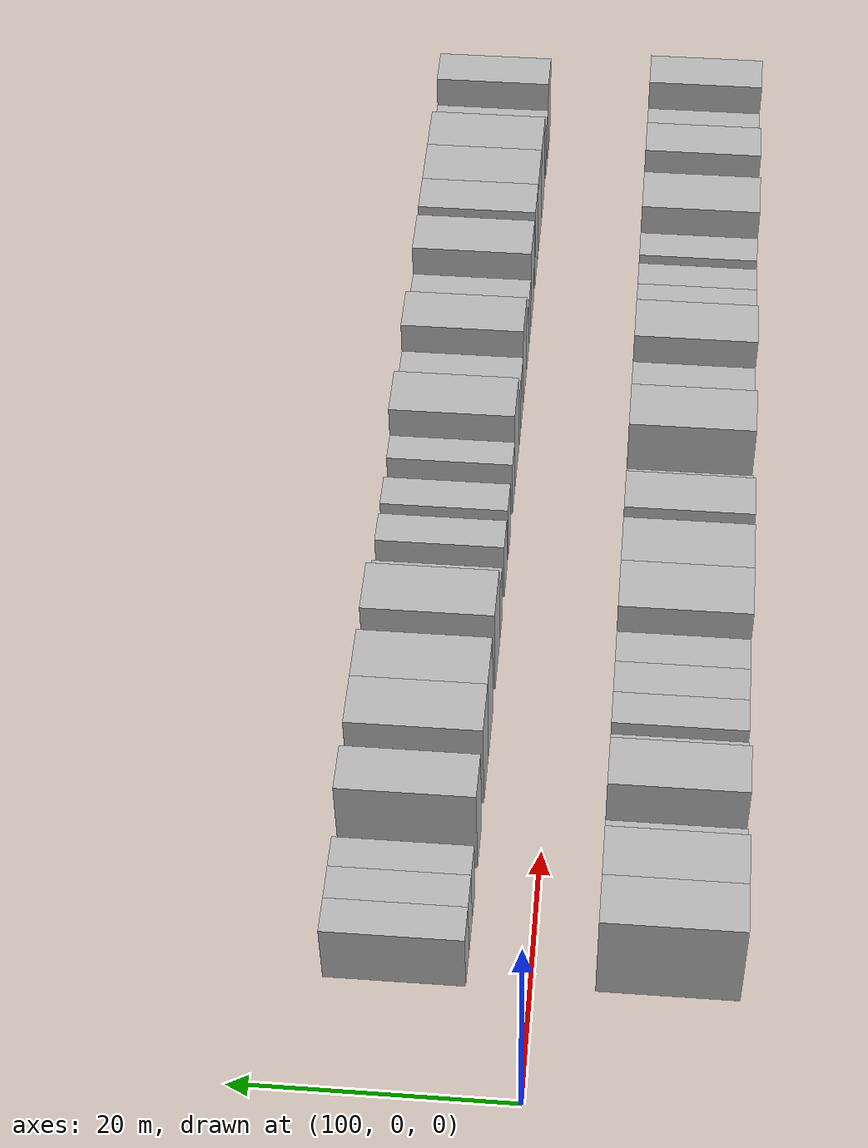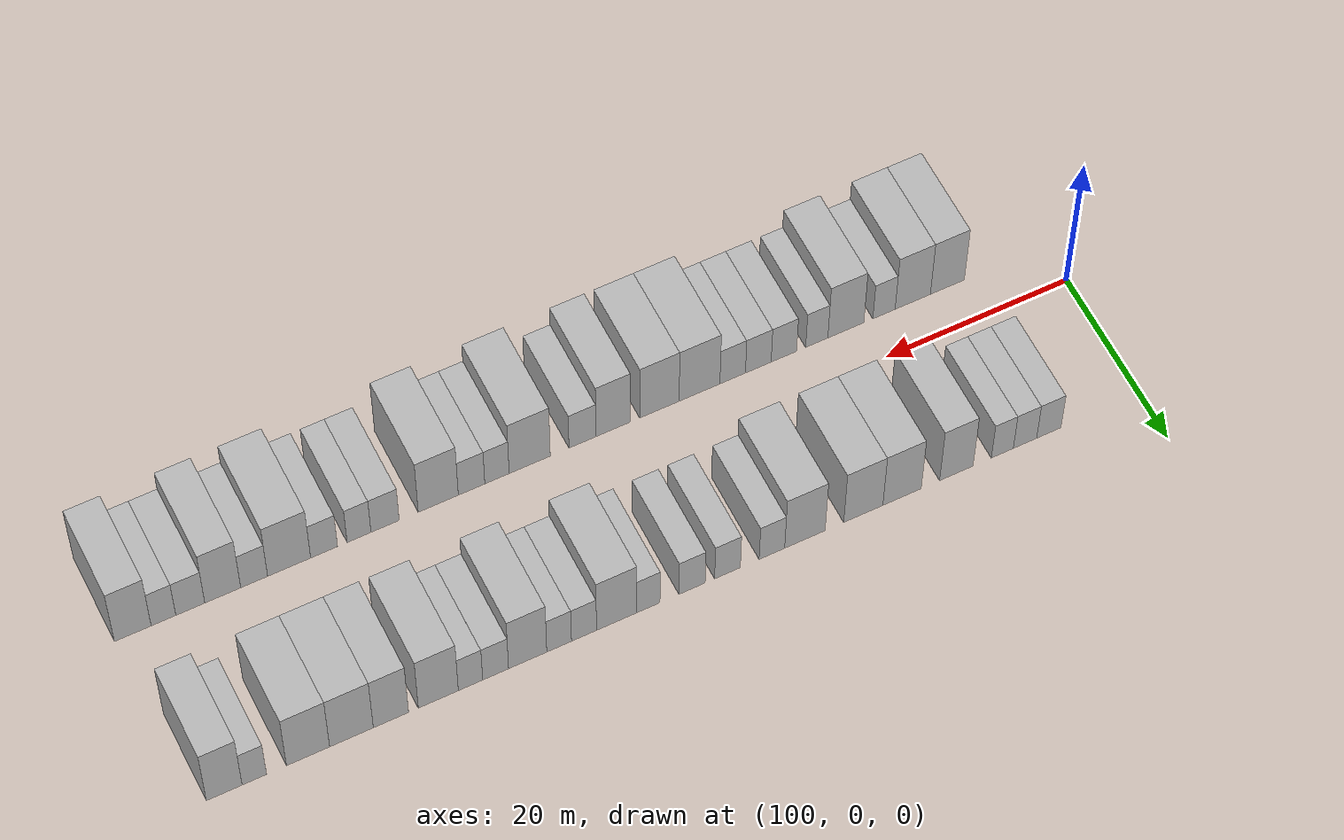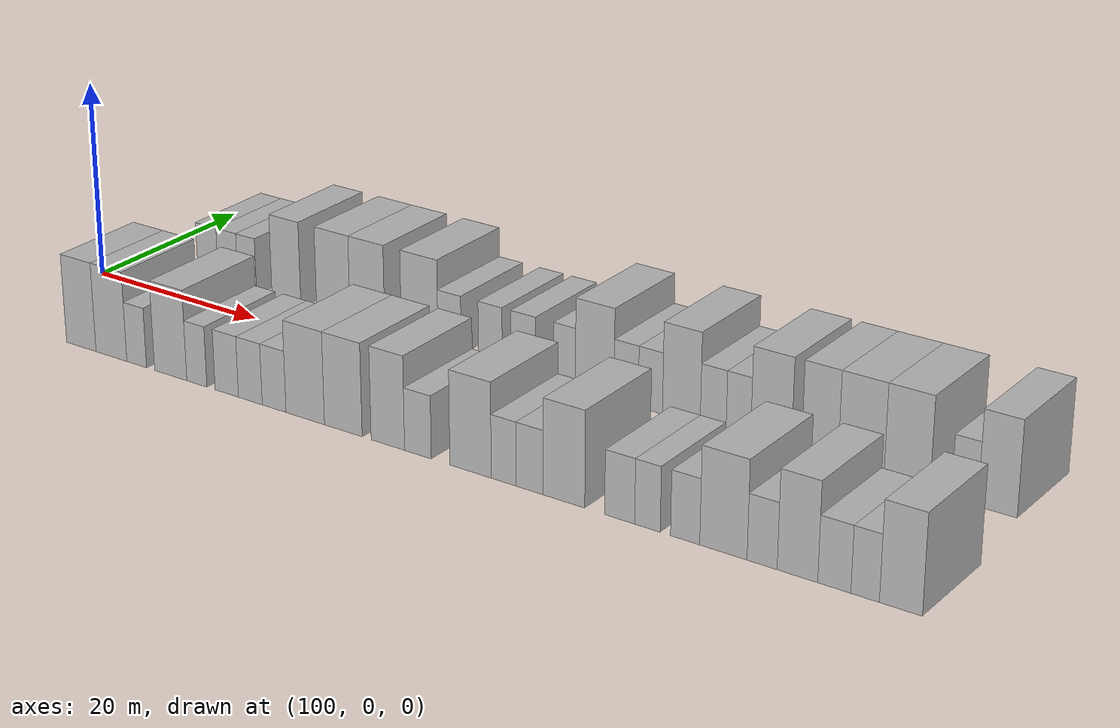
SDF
<sdf version="1.6">
 <world name="default">
  <model name="building_24">
   <static>1</static>
   <pose>110.0311 9.5000 0 0.000000 0.000000 1.570796</pose>
   <link name="link">
    <pose>0 0 3.00 0 0 0</pose>
    <collision name="collision"><geometry><box><size>10.0000 2.6754 6.0000</size></box></geometry></collision>
    <visual name="visual">
     <cast_shadows>0</cast_shadows>
     <geometry><box><size>10.0000 2.6754 6.0000</size></box></geometry>
     <material>
      <script>
       <uri>model://HANNAS_wall/materials/scripts</uri>
       <uri>model://HANNAS_wall/materials/textures</uri>
       <name>vrc/HANNAS_wall</name>
      </script>
     </material>
    </visual>
   </link>
  </model>
  <model name="building_25">
   <static>1</static>
   <pose>112.6506 9.5000 0 0.000000 0.000000 1.570796</pose>
   <link name="link">
    <pose>0 0 3.00 0 0 0</pose>
    <collision name="collision"><geometry><box><size>10.0000 2.5636 6.0000</size></box></geometry></collision>
    <visual name="visual">
     <cast_shadows>0</cast_shadows>
     <geometry><box><size>10.0000 2.5636 6.0000</size></box></geometry>
     <material>
      <script>
       <uri>model://HANNAS_wall/materials/scripts</uri>
       <uri>model://HANNAS_wall/materials/textures</uri>
       <name>vrc/HANNAS_wall</name>
      </script>
     </material>
    </visual>
   </link>
  </model>
  <model name="building_26">
   <static>1</static>
   <pose>115.1369 9.5000 0 0.000000 0.000000 1.570796</pose>
   <link name="link">
    <pose>0 0 3.00 0 0 0</pose>
    <collision name="collision"><geometry><box><size>10.0000 2.4092 6.0000</size></box></geometry></collision>
    <visual name="visual">
     <cast_shadows>0</cast_shadows>
     <geometry><box><size>10.0000 2.4092 6.0000</size></box></geometry>
     <material>
      <script>
       <uri>model://HANNAS_wall/materials/scripts</uri>
       <uri>model://HANNAS_wall/materials/textures</uri>
       <name>vrc/HANNAS_wall</name>
      </script>
     </material>
    </visual>
   </link>
  </model>
  <model name="building_27">
   <static>1</static>
   <pose>120.1690 9.5000 0 0.000000 0.000000 1.570796</pose>
   <link name="link">
    <pose>0 0 4.50 0 0 0</pose>
    <collision name="collision"><geometry><box><size>10.0000 3.6550 9.0000</size></box></geometry></collision>
    <visual name="visual">
     <cast_shadows>0</cast_shadows>
     <geometry><box><size>10.0000 3.6550 9.0000</size></box></geometry>
     <material>
      <script>
       <uri>model://HANNAS_wall/materials/scripts</uri>
       <uri>model://HANNAS_wall/materials/textures</uri>
       <name>vrc/HANNAS_wall</name>
      </script>
     </material>
    </visual>
   </link>
  </model>
  <model name="building_28">
   <static>1</static>
   <pose>126.0725 9.5000 0 0.000000 0.000000 1.570796</pose>
   <link name="link">
    <pose>0 0 4.50 0 0 0</pose>
    <collision name="collision"><geometry><box><size>10.0000 4.1520 9.0000</size></box></geometry></collision>
    <visual name="visual">
     <cast_shadows>0</cast_shadows>
     <geometry><box><size>10.0000 4.1520 9.0000</size></box></geometry>
     <material>
      <script>
       <uri>model://HANNAS_wall/materials/scripts</uri>
       <uri>model://HANNAS_wall/materials/textures</uri>
       <name>vrc/HANNAS_wall</name>
      </script>
     </material>
    </visual>
   </link>
  </model>
  <model name="building_29">
   <static>1</static>
   <pose>130.2625 9.5000 0 0.000000 0.000000 1.570796</pose>
   <link name="link">
    <pose>0 0 4.50 0 0 0</pose>
    <collision name="collision"><geometry><box><size>10.0000 4.2280 9.0000</size></box></geometry></collision>
    <visual name="visual">
     <cast_shadows>0</cast_shadows>
     <geometry><box><size>10.0000 4.2280 9.0000</size></box></geometry>
     <material>
      <script>
       <uri>model://HANNAS_wall/materials/scripts</uri>
       <uri>model://HANNAS_wall/materials/textures</uri>
       <name>vrc/HANNAS_wall</name>
      </script>
     </material>
    </visual>
   </link>
  </model>
  <model name="building_30">
   <static>1</static>
   <pose>136.5454 9.5000 0 0.000000 0.000000 1.570796</pose>
   <link name="link">
    <pose>0 0 4.50 0 0 0</pose>
    <collision name="collision"><geometry><box><size>10.0000 4.3378 9.0000</size></box></geometry></collision>
    <visual name="visual">
     <cast_shadows>0</cast_shadows>
     <geometry><box><size>10.0000 4.3378 9.0000</size></box></geometry>
     <material>
      <script>
       <uri>model://HANNAS_wall/materials/scripts</uri>
       <uri>model://HANNAS_wall/materials/textures</uri>
       <name>vrc/HANNAS_wall</name>
      </script>
     </material>
    </visual>
   </link>
  </model>
  <model name="building_31">
   <static>1</static>
   <pose>140.0776 9.5000 0 0.000000 0.000000 1.570796</pose>
   <link name="link">
    <pose>0 0 3.00 0 0 0</pose>
    <collision name="collision"><geometry><box><size>10.0000 2.7265 6.0000</size></box></geometry></collision>
    <visual name="visual">
     <cast_shadows>0</cast_shadows>
     <geometry><box><size>10.0000 2.7265 6.0000</size></box></geometry>
     <material>
      <script>
       <uri>model://HANNAS_wall/materials/scripts</uri>
       <uri>model://HANNAS_wall/materials/textures</uri>
       <name>vrc/HANNAS_wall</name>
      </script>
     </material>
    </visual>
   </link>
  </model>
  <model name="building_32">
   <static>1</static>
   <pose>144.8093 9.5000 0 0.000000 0.000000 1.570796</pose>
   <link name="link">
    <pose>0 0 3.00 0 0 0</pose>
    <collision name="collision"><geometry><box><size>10.0000 2.7369 6.0000</size></box></geometry></collision>
    <visual name="visual">
     <cast_shadows>0</cast_shadows>
     <geometry><box><size>10.0000 2.7369 6.0000</size></box></geometry>
     <material>
      <script>
       <uri>model://HANNAS_wall/materials/scripts</uri>
       <uri>model://HANNAS_wall/materials/textures</uri>
       <name>vrc/HANNAS_wall</name>
      </script>
     </material>
    </visual>
   </link>
  </model>
  <model name="building_33">
   <static>1</static>
   <pose>148.5664 9.5000 0 0.000000 0.000000 1.570796</pose>
   <link name="link">
    <pose>0 0 3.00 0 0 0</pose>
    <collision name="collision"><geometry><box><size>10.0000 2.7774 6.0000</size></box></geometry></collision>
    <visual name="visual">
     <cast_shadows>0</cast_shadows>
     <geometry><box><size>10.0000 2.7774 6.0000</size></box></geometry>
     <material>
      <script>
       <uri>model://HANNAS_wall/materials/scripts</uri>
       <uri>model://HANNAS_wall/materials/textures</uri>
       <name>vrc/HANNAS_wall</name>
      </script>
     </material>
    </visual>
   </link>
  </model>
  <model name="building_34">
   <static>1</static>
   <pose>153.1782 9.5000 0 0.000000 0.000000 1.570796</pose>
   <link name="link">
    <pose>0 0 3.00 0 0 0</pose>
    <collision name="collision"><geometry><box><size>10.0000 2.4462 6.0000</size></box></geometry></collision>
    <visual name="visual">
     <cast_shadows>0</cast_shadows>
     <geometry><box><size>10.0000 2.4462 6.0000</size></box></geometry>
     <material>
      <script>
       <uri>model://HANNAS_wall/materials/scripts</uri>
       <uri>model://HANNAS_wall/materials/textures</uri>
       <name>vrc/HANNAS_wall</name>
      </script>
     </material>
    </visual>
   </link>
  </model>
  <model name="building_35">
   <static>1</static>
   <pose>156.5116 9.5000 0 0.000000 0.000000 1.570796</pose>
   <link name="link">
    <pose>0 0 4.50 0 0 0</pose>
    <collision name="collision"><geometry><box><size>10.0000 4.2205 9.0000</size></box></geometry></collision>
    <visual name="visual">
     <cast_shadows>0</cast_shadows>
     <geometry><box><size>10.0000 4.2205 9.0000</size></box></geometry>
     <material>
      <script>
       <uri>model://HANNAS_wall/materials/scripts</uri>
       <uri>model://HANNAS_wall/materials/textures</uri>
       <name>vrc/HANNAS_wall</name>
      </script>
     </material>
    </visual>
   </link>
  </model>
  <model name="building_36">
   <static>1</static>
   <pose>159.9306 9.5000 0 0.000000 0.000000 1.570796</pose>
   <link name="link">
    <pose>0 0 3.00 0 0 0</pose>
    <collision name="collision"><geometry><box><size>10.0000 2.6175 6.0000</size></box></geometry></collision>
    <visual name="visual">
     <cast_shadows>0</cast_shadows>
     <geometry><box><size>10.0000 2.6175 6.0000</size></box></geometry>
     <material>
      <script>
       <uri>model://HANNAS_wall/materials/scripts</uri>
       <uri>model://HANNAS_wall/materials/textures</uri>
       <name>vrc/HANNAS_wall</name>
      </script>
     </material>
    </visual>
   </link>
  </model>
  <model name="building_37">
   <static>1</static>
   <pose>162.5271 9.5000 0 0.000000 0.000000 1.570796</pose>
   <link name="link">
    <pose>0 0 3.00 0 0 0</pose>
    <collision name="collision"><geometry><box><size>10.0000 2.5756 6.0000</size></box></geometry></collision>
    <visual name="visual">
     <cast_shadows>0</cast_shadows>
     <geometry><box><size>10.0000 2.5756 6.0000</size></box></geometry>
     <material>
      <script>
       <uri>model://HANNAS_wall/materials/scripts</uri>
       <uri>model://HANNAS_wall/materials/textures</uri>
       <name>vrc/HANNAS_wall</name>
      </script>
     </material>
    </visual>
   </link>
  </model>
  <model name="building_38">
   <static>1</static>
   <pose>165.7989 9.5000 0 0.000000 0.000000 1.570796</pose>
   <link name="link">
    <pose>0 0 4.50 0 0 0</pose>
    <collision name="collision"><geometry><box><size>10.0000 3.9678 9.0000</size></box></geometry></collision>
    <visual name="visual">
     <cast_shadows>0</cast_shadows>
     <geometry><box><size>10.0000 3.9678 9.0000</size></box></geometry>
     <material>
      <script>
       <uri>model://HANNAS_wall/materials/scripts</uri>
       <uri>model://HANNAS_wall/materials/textures</uri>
       <name>vrc/HANNAS_wall</name>
      </script>
     </material>
    </visual>
   </link>
  </model>
  <model name="building_39">
   <static>1</static>
   <pose>169.1199 9.5000 0 0.000000 0.000000 1.570796</pose>
   <link name="link">
    <pose>0 0 3.00 0 0 0</pose>
    <collision name="collision"><geometry><box><size>10.0000 2.6742 6.0000</size></box></geometry></collision>
    <visual name="visual">
     <cast_shadows>0</cast_shadows>
     <geometry><box><size>10.0000 2.6742 6.0000</size></box></geometry>
     <material>
      <script>
       <uri>model://HANNAS_wall/materials/scripts</uri>
       <uri>model://HANNAS_wall/materials/textures</uri>
       <name>vrc/HANNAS_wall</name>
      </script>
     </material>
    </visual>
   </link>
  </model>
  <model name="building_40">
   <static>1</static>
   <pose>171.7165 9.5000 0 0.000000 0.000000 1.570796</pose>
   <link name="link">
    <pose>0 0 3.00 0 0 0</pose>
    <collision name="collision"><geometry><box><size>10.0000 2.5189 6.0000</size></box></geometry></collision>
    <visual name="visual">
     <cast_shadows>0</cast_shadows>
     <geometry><box><size>10.0000 2.5189 6.0000</size></box></geometry>
     <material>
      <script>
       <uri>model://HANNAS_wall/materials/scripts</uri>
       <uri>model://HANNAS_wall/materials/textures</uri>
       <name>vrc/HANNAS_wall</name>
      </script>
     </material>
    </visual>
   </link>
  </model>
  <model name="building_41">
   <static>1</static>
   <pose>175.0330 9.5000 0 0.000000 0.000000 1.570796</pose>
   <link name="link">
    <pose>0 0 4.50 0 0 0</pose>
    <collision name="collision"><geometry><box><size>10.0000 4.1142 9.0000</size></box></geometry></collision>
    <visual name="visual">
     <cast_shadows>0</cast_shadows>
     <geometry><box><size>10.0000 4.1142 9.0000</size></box></geometry>
     <material>
      <script>
       <uri>model://HANNAS_wall/materials/scripts</uri>
       <uri>model://HANNAS_wall/materials/textures</uri>
       <name>vrc/HANNAS_wall</name>
      </script>
     </material>
    </visual>
   </link>
  </model>
  <model name="building_42">
   <static>1</static>
   <pose>179.8925 9.5000 0 0.000000 0.000000 1.570796</pose>
   <link name="link">
    <pose>0 0 4.50 0 0 0</pose>
    <collision name="collision"><geometry><box><size>10.0000 3.6046 9.0000</size></box></geometry></collision>
    <visual name="visual">
     <cast_shadows>0</cast_shadows>
     <geometry><box><size>10.0000 3.6046 9.0000</size></box></geometry>
     <material>
      <script>
       <uri>model://HANNAS_wall/materials/scripts</uri>
       <uri>model://HANNAS_wall/materials/textures</uri>
       <name>vrc/HANNAS_wall</name>
      </script>
     </material>
    </visual>
   </link>
  </model>
  <model name="building_43">
   <static>1</static>
   <pose>183.9188 9.5000 0 0.000000 0.000000 1.570796</pose>
   <link name="link">
    <pose>0 0 4.50 0 0 0</pose>
    <collision name="collision"><geometry><box><size>10.0000 4.4481 9.0000</size></box></geometry></collision>
    <visual name="visual">
     <cast_shadows>0</cast_shadows>
     <geometry><box><size>10.0000 4.4481 9.0000</size></box></geometry>
     <material>
      <script>
       <uri>model://HANNAS_wall/materials/scripts</uri>
       <uri>model://HANNAS_wall/materials/textures</uri>
       <name>vrc/HANNAS_wall</name>
      </script>
     </material>
    </visual>
   </link>
  </model>
  <model name="building_44">
   <static>1</static>
   <pose>188.3335 9.5000 0 0.000000 0.000000 1.570796</pose>
   <link name="link">
    <pose>0 0 4.50 0 0 0</pose>
    <collision name="collision"><geometry><box><size>10.0000 4.3814 9.0000</size></box></geometry></collision>
    <visual name="visual">
     <cast_shadows>0</cast_shadows>
     <geometry><box><size>10.0000 4.3814 9.0000</size></box></geometry>
     <material>
      <script>
       <uri>model://HANNAS_wall/materials/scripts</uri>
       <uri>model://HANNAS_wall/materials/textures</uri>
       <name>vrc/HANNAS_wall</name>
      </script>
     </material>
    </visual>
   </link>
  </model>
  <model name="building_45">
   <static>1</static>
   <pose>193.7560 9.5000 0 0.000000 0.000000 1.570796</pose>
   <link name="link">
    <pose>0 0 3.00 0 0 0</pose>
    <collision name="collision"><geometry><box><size>10.0000 2.4636 6.0000</size></box></geometry></collision>
    <visual name="visual">
     <cast_shadows>0</cast_shadows>
     <geometry><box><size>10.0000 2.4636 6.0000</size></box></geometry>
     <material>
      <script>
       <uri>model://HANNAS_wall/materials/scripts</uri>
       <uri>model://HANNAS_wall/materials/textures</uri>
       <name>vrc/HANNAS_wall</name>
      </script>
     </material>
    </visual>
   </link>
  </model>
  <model name="building_46">
   <static>1</static>
   <pose>196.7881 9.5000 0 0.000000 0.000000 1.570796</pose>
   <link name="link">
    <pose>0 0 4.50 0 0 0</pose>
    <collision name="collision"><geometry><box><size>10.0000 3.6006 9.0000</size></box></geometry></collision>
    <visual name="visual">
     <cast_shadows>0</cast_shadows>
     <geometry><box><size>10.0000 3.6006 9.0000</size></box></geometry>
     <material>
      <script>
       <uri>model://HANNAS_wall/materials/scripts</uri>
       <uri>model://HANNAS_wall/materials/textures</uri>
       <name>vrc/HANNAS_wall</name>
      </script>
     </material>
    </visual>
   </link>
  </model>
  <model name="building_71">
   <static>1</static>
   <pose>110.8868 -9.5000 0 0.000000 0.000000 1.570796</pose>
   <link name="link">
    <pose>0 0 4.50 0 0 0</pose>
    <collision name="collision"><geometry><box><size>10.0000 3.8021 9.0000</size></box></geometry></collision>
    <visual name="visual">
     <cast_shadows>0</cast_shadows>
     <geometry><box><size>10.0000 3.8021 9.0000</size></box></geometry>
     <material>
      <script>
       <uri>model://HANNAS_wall/materials/scripts</uri>
       <uri>model://HANNAS_wall/materials/textures</uri>
       <name>vrc/HANNAS_wall</name>
      </script>
     </material>
    </visual>
   </link>
  </model>
  <model name="building_72">
   <static>1</static>
   <pose>114.7476 -9.5000 0 0.000000 0.000000 1.570796</pose>
   <link name="link">
    <pose>0 0 4.50 0 0 0</pose>
    <collision name="collision"><geometry><box><size>10.0000 3.9194 9.0000</size></box></geometry></collision>
    <visual name="visual">
     <cast_shadows>0</cast_shadows>
     <geometry><box><size>10.0000 3.9194 9.0000</size></box></geometry>
     <material>
      <script>
       <uri>model://HANNAS_wall/materials/scripts</uri>
       <uri>model://HANNAS_wall/materials/textures</uri>
       <name>vrc/HANNAS_wall</name>
      </script>
     </material>
    </visual>
   </link>
  </model>
  <model name="building_73">
   <static>1</static>
   <pose>117.9444 -9.5000 0 0.000000 0.000000 1.570796</pose>
   <link name="link">
    <pose>0 0 3.00 0 0 0</pose>
    <collision name="collision"><geometry><box><size>10.0000 2.4742 6.0000</size></box></geometry></collision>
    <visual name="visual">
     <cast_shadows>0</cast_shadows>
     <geometry><box><size>10.0000 2.4742 6.0000</size></box></geometry>
     <material>
      <script>
       <uri>model://HANNAS_wall/materials/scripts</uri>
       <uri>model://HANNAS_wall/materials/textures</uri>
       <name>vrc/HANNAS_wall</name>
      </script>
     </material>
    </visual>
   </link>
  </model>
  <model name="building_74">
   <static>1</static>
   <pose>122.1702 -9.5000 0 0.000000 0.000000 1.570796</pose>
   <link name="link">
    <pose>0 0 4.50 0 0 0</pose>
    <collision name="collision"><geometry><box><size>10.0000 3.9774 9.0000</size></box></geometry></collision>
    <visual name="visual">
     <cast_shadows>0</cast_shadows>
     <geometry><box><size>10.0000 3.9774 9.0000</size></box></geometry>
     <material>
      <script>
       <uri>model://HANNAS_wall/materials/scripts</uri>
       <uri>model://HANNAS_wall/materials/textures</uri>
       <name>vrc/HANNAS_wall</name>
      </script>
     </material>
    </visual>
   </link>
  </model>
  <model name="building_75">
   <static>1</static>
   <pose>125.3804 -9.5000 0 0.000000 0.000000 1.570796</pose>
   <link name="link">
    <pose>0 0 3.00 0 0 0</pose>
    <collision name="collision"><geometry><box><size>10.0000 2.4429 6.0000</size></box></geometry></collision>
    <visual name="visual">
     <cast_shadows>0</cast_shadows>
     <geometry><box><size>10.0000 2.4429 6.0000</size></box></geometry>
     <material>
      <script>
       <uri>model://HANNAS_wall/materials/scripts</uri>
       <uri>model://HANNAS_wall/materials/textures</uri>
       <name>vrc/HANNAS_wall</name>
      </script>
     </material>
    </visual>
   </link>
  </model>
  <model name="building_76">
   <static>1</static>
   <pose>128.9971 -9.5000 0 0.000000 0.000000 1.570796</pose>
   <link name="link">
    <pose>0 0 3.00 0 0 0</pose>
    <collision name="collision"><geometry><box><size>10.0000 2.7904 6.0000</size></box></geometry></collision>
    <visual name="visual">
     <cast_shadows>0</cast_shadows>
     <geometry><box><size>10.0000 2.7904 6.0000</size></box></geometry>
     <material>
      <script>
       <uri>model://HANNAS_wall/materials/scripts</uri>
       <uri>model://HANNAS_wall/materials/textures</uri>
       <name>vrc/HANNAS_wall</name>
      </script>
     </material>
    </visual>
   </link>
  </model>
  <model name="building_77">
   <static>1</static>
   <pose>131.7985 -9.5000 0 0.000000 0.000000 1.570796</pose>
   <link name="link">
    <pose>0 0 3.00 0 0 0</pose>
    <collision name="collision"><geometry><box><size>10.0000 2.8124 6.0000</size></box></geometry></collision>
    <visual name="visual">
     <cast_shadows>0</cast_shadows>
     <geometry><box><size>10.0000 2.8124 6.0000</size></box></geometry>
     <material>
      <script>
       <uri>model://HANNAS_wall/materials/scripts</uri>
       <uri>model://HANNAS_wall/materials/textures</uri>
       <name>vrc/HANNAS_wall</name>
      </script>
     </material>
    </visual>
   </link>
  </model>
  <model name="building_78">
   <static>1</static>
   <pose>134.5979 -9.5000 0 0.000000 0.000000 1.570796</pose>
   <link name="link">
    <pose>0 0 3.00 0 0 0</pose>
    <collision name="collision"><geometry><box><size>10.0000 2.7864 6.0000</size></box></geometry></collision>
    <visual name="visual">
     <cast_shadows>0</cast_shadows>
     <geometry><box><size>10.0000 2.7864 6.0000</size></box></geometry>
     <material>
      <script>
       <uri>model://HANNAS_wall/materials/scripts</uri>
       <uri>model://HANNAS_wall/materials/textures</uri>
       <name>vrc/HANNAS_wall</name>
      </script>
     </material>
    </visual>
   </link>
  </model>
  <model name="building_79">
   <static>1</static>
   <pose>138.2084 -9.5000 0 0.000000 0.000000 1.570796</pose>
   <link name="link">
    <pose>0 0 4.50 0 0 0</pose>
    <collision name="collision"><geometry><box><size>10.0000 4.4346 9.0000</size></box></geometry></collision>
    <visual name="visual">
     <cast_shadows>0</cast_shadows>
     <geometry><box><size>10.0000 4.4346 9.0000</size></box></geometry>
     <material>
      <script>
       <uri>model://HANNAS_wall/materials/scripts</uri>
       <uri>model://HANNAS_wall/materials/textures</uri>
       <name>vrc/HANNAS_wall</name>
      </script>
     </material>
    </visual>
   </link>
  </model>
  <model name="building_80">
   <static>1</static>
   <pose>142.5551 -9.5000 0 0.000000 0.000000 1.570796</pose>
   <link name="link">
    <pose>0 0 4.50 0 0 0</pose>
    <collision name="collision"><geometry><box><size>10.0000 4.2588 9.0000</size></box></geometry></collision>
    <visual name="visual">
     <cast_shadows>0</cast_shadows>
     <geometry><box><size>10.0000 4.2588 9.0000</size></box></geometry>
     <material>
      <script>
       <uri>model://HANNAS_wall/materials/scripts</uri>
       <uri>model://HANNAS_wall/materials/textures</uri>
       <name>vrc/HANNAS_wall</name>
      </script>
     </material>
    </visual>
   </link>
  </model>
  <model name="building_81">
   <static>1</static>
   <pose>147.5357 -9.5000 0 0.000000 0.000000 1.570796</pose>
   <link name="link">
    <pose>0 0 4.50 0 0 0</pose>
    <collision name="collision"><geometry><box><size>10.0000 3.7023 9.0000</size></box></geometry></collision>
    <visual name="visual">
     <cast_shadows>0</cast_shadows>
     <geometry><box><size>10.0000 3.7023 9.0000</size></box></geometry>
     <material>
      <script>
       <uri>model://HANNAS_wall/materials/scripts</uri>
       <uri>model://HANNAS_wall/materials/textures</uri>
       <name>vrc/HANNAS_wall</name>
      </script>
     </material>
    </visual>
   </link>
  </model>
  <model name="building_82">
   <static>1</static>
   <pose>150.8367 -9.5000 0 0.000000 0.000000 1.570796</pose>
   <link name="link">
    <pose>0 0 3.00 0 0 0</pose>
    <collision name="collision"><geometry><box><size>10.0000 2.8998 6.0000</size></box></geometry></collision>
    <visual name="visual">
     <cast_shadows>0</cast_shadows>
     <geometry><box><size>10.0000 2.8998 6.0000</size></box></geometry>
     <material>
      <script>
       <uri>model://HANNAS_wall/materials/scripts</uri>
       <uri>model://HANNAS_wall/materials/textures</uri>
       <name>vrc/HANNAS_wall</name>
      </script>
     </material>
    </visual>
   </link>
  </model>
  <model name="building_83">
   <static>1</static>
   <pose>156.4780 -9.5000 0 0.000000 0.000000 1.570796</pose>
   <link name="link">
    <pose>0 0 4.50 0 0 0</pose>
    <collision name="collision"><geometry><box><size>10.0000 4.3826 9.0000</size></box></geometry></collision>
    <visual name="visual">
     <cast_shadows>0</cast_shadows>
     <geometry><box><size>10.0000 4.3826 9.0000</size></box></geometry>
     <material>
      <script>
       <uri>model://HANNAS_wall/materials/scripts</uri>
       <uri>model://HANNAS_wall/materials/textures</uri>
       <name>vrc/HANNAS_wall</name>
      </script>
     </material>
    </visual>
   </link>
  </model>
  <model name="building_84">
   <static>1</static>
   <pose>159.9601 -9.5000 0 0.000000 0.000000 1.570796</pose>
   <link name="link">
    <pose>0 0 3.00 0 0 0</pose>
    <collision name="collision"><geometry><box><size>10.0000 2.5817 6.0000</size></box></geometry></collision>
    <visual name="visual">
     <cast_shadows>0</cast_shadows>
     <geometry><box><size>10.0000 2.5817 6.0000</size></box></geometry>
     <material>
      <script>
       <uri>model://HANNAS_wall/materials/scripts</uri>
       <uri>model://HANNAS_wall/materials/textures</uri>
       <name>vrc/HANNAS_wall</name>
      </script>
     </material>
    </visual>
   </link>
  </model>
  <model name="building_85">
   <static>1</static>
   <pose>162.6536 -9.5000 0 0.000000 0.000000 1.570796</pose>
   <link name="link">
    <pose>0 0 3.00 0 0 0</pose>
    <collision name="collision"><geometry><box><size>10.0000 2.8052 6.0000</size></box></geometry></collision>
    <visual name="visual">
     <cast_shadows>0</cast_shadows>
     <geometry><box><size>10.0000 2.8052 6.0000</size></box></geometry>
     <material>
      <script>
       <uri>model://HANNAS_wall/materials/scripts</uri>
       <uri>model://HANNAS_wall/materials/textures</uri>
       <name>vrc/HANNAS_wall</name>
      </script>
     </material>
    </visual>
   </link>
  </model>
  <model name="building_86">
   <static>1</static>
   <pose>166.1716 -9.5000 0 0.000000 0.000000 1.570796</pose>
   <link name="link">
    <pose>0 0 4.50 0 0 0</pose>
    <collision name="collision"><geometry><box><size>10.0000 4.2308 9.0000</size></box></geometry></collision>
    <visual name="visual">
     <cast_shadows>0</cast_shadows>
     <geometry><box><size>10.0000 4.2308 9.0000</size></box></geometry>
     <material>
      <script>
       <uri>model://HANNAS_wall/materials/scripts</uri>
       <uri>model://HANNAS_wall/materials/textures</uri>
       <name>vrc/HANNAS_wall</name>
      </script>
     </material>
    </visual>
   </link>
  </model>
  <model name="building_87">
   <static>1</static>
   <pose>171.7660 -9.5000 0 0.000000 0.000000 1.570796</pose>
   <link name="link">
    <pose>0 0 3.00 0 0 0</pose>
    <collision name="collision"><geometry><box><size>10.0000 2.9581 6.0000</size></box></geometry></collision>
    <visual name="visual">
     <cast_shadows>0</cast_shadows>
     <geometry><box><size>10.0000 2.9581 6.0000</size></box></geometry>
     <material>
      <script>
       <uri>model://HANNAS_wall/materials/scripts</uri>
       <uri>model://HANNAS_wall/materials/textures</uri>
       <name>vrc/HANNAS_wall</name>
      </script>
     </material>
    </visual>
   </link>
  </model>
  <model name="building_88">
   <static>1</static>
   <pose>174.4922 -9.5000 0 0.000000 0.000000 1.570796</pose>
   <link name="link">
    <pose>0 0 3.00 0 0 0</pose>
    <collision name="collision"><geometry><box><size>10.0000 2.4943 6.0000</size></box></geometry></collision>
    <visual name="visual">
     <cast_shadows>0</cast_shadows>
     <geometry><box><size>10.0000 2.4943 6.0000</size></box></geometry>
     <material>
      <script>
       <uri>model://HANNAS_wall/materials/scripts</uri>
       <uri>model://HANNAS_wall/materials/textures</uri>
       <name>vrc/HANNAS_wall</name>
      </script>
     </material>
    </visual>
   </link>
  </model>
  <model name="building_89">
   <static>1</static>
   <pose>178.1392 -9.5000 0 0.000000 0.000000 1.570796</pose>
   <link name="link">
    <pose>0 0 3.00 0 0 0</pose>
    <collision name="collision"><geometry><box><size>10.0000 2.7997 6.0000</size></box></geometry></collision>
    <visual name="visual">
     <cast_shadows>0</cast_shadows>
     <geometry><box><size>10.0000 2.7997 6.0000</size></box></geometry>
     <material>
      <script>
       <uri>model://HANNAS_wall/materials/scripts</uri>
       <uri>model://HANNAS_wall/materials/textures</uri>
       <name>vrc/HANNAS_wall</name>
      </script>
     </material>
    </visual>
   </link>
  </model>
  <model name="building_90">
   <static>1</static>
   <pose>181.7713 -9.5000 0 0.000000 0.000000 1.570796</pose>
   <link name="link">
    <pose>0 0 4.50 0 0 0</pose>
    <collision name="collision"><geometry><box><size>10.0000 4.4643 9.0000</size></box></geometry></collision>
    <visual name="visual">
     <cast_shadows>0</cast_shadows>
     <geometry><box><size>10.0000 4.4643 9.0000</size></box></geometry>
     <material>
      <script>
       <uri>model://HANNAS_wall/materials/scripts</uri>
       <uri>model://HANNAS_wall/materials/textures</uri>
       <name>vrc/HANNAS_wall</name>
      </script>
     </material>
    </visual>
   </link>
  </model>
  <model name="building_91">
   <static>1</static>
   <pose>185.3955 -9.5000 0 0.000000 0.000000 1.570796</pose>
   <link name="link">
    <pose>0 0 3.00 0 0 0</pose>
    <collision name="collision"><geometry><box><size>10.0000 2.7842 6.0000</size></box></geometry></collision>
    <visual name="visual">
     <cast_shadows>0</cast_shadows>
     <geometry><box><size>10.0000 2.7842 6.0000</size></box></geometry>
     <material>
      <script>
       <uri>model://HANNAS_wall/materials/scripts</uri>
       <uri>model://HANNAS_wall/materials/textures</uri>
       <name>vrc/HANNAS_wall</name>
      </script>
     </material>
    </visual>
   </link>
  </model>
  <model name="building_92">
   <static>1</static>
   <pose>188.6379 -9.5000 0 0.000000 0.000000 1.570796</pose>
   <link name="link">
    <pose>0 0 4.50 0 0 0</pose>
    <collision name="collision"><geometry><box><size>10.0000 3.7007 9.0000</size></box></geometry></collision>
    <visual name="visual">
     <cast_shadows>0</cast_shadows>
     <geometry><box><size>10.0000 3.7007 9.0000</size></box></geometry>
     <material>
      <script>
       <uri>model://HANNAS_wall/materials/scripts</uri>
       <uri>model://HANNAS_wall/materials/textures</uri>
       <name>vrc/HANNAS_wall</name>
      </script>
     </material>
    </visual>
   </link>
  </model>
  <model name="building_93">
   <static>1</static>
   <pose>191.9745 -9.5000 0 0.000000 0.000000 1.570796</pose>
   <link name="link">
    <pose>0 0 3.00 0 0 0</pose>
    <collision name="collision"><geometry><box><size>10.0000 2.9725 6.0000</size></box></geometry></collision>
    <visual name="visual">
     <cast_shadows>0</cast_shadows>
     <geometry><box><size>10.0000 2.9725 6.0000</size></box></geometry>
     <material>
      <script>
       <uri>model://HANNAS_wall/materials/scripts</uri>
       <uri>model://HANNAS_wall/materials/textures</uri>
       <name>vrc/HANNAS_wall</name>
      </script>
     </material>
    </visual>
   </link>
  </model>
  <model name="building_94">
   <static>1</static>
   <pose>194.7215 -9.5000 0 0.000000 0.000000 1.570796</pose>
   <link name="link">
    <pose>0 0 3.00 0 0 0</pose>
    <collision name="collision"><geometry><box><size>10.0000 2.5215 6.0000</size></box></geometry></collision>
    <visual name="visual">
     <cast_shadows>0</cast_shadows>
     <geometry><box><size>10.0000 2.5215 6.0000</size></box></geometry>
     <material>
      <script>
       <uri>model://HANNAS_wall/materials/scripts</uri>
       <uri>model://HANNAS_wall/materials/textures</uri>
       <name>vrc/HANNAS_wall</name>
      </script>
     </material>
    </visual>
   </link>
  </model>
  <model name="building_95">
   <static>1</static>
   <pose>197.8594 -9.5000 0 0.000000 0.000000 1.570796</pose>
   <link name="link">
    <pose>0 0 4.50 0 0 0</pose>
    <collision name="collision"><geometry><box><size>10.0000 3.7543 9.0000</size></box></geometry></collision>
    <visual name="visual">
     <cast_shadows>0</cast_shadows>
     <geometry><box><size>10.0000 3.7543 9.0000</size></box></geometry>
     <material>
      <script>
       <uri>model://HANNAS_wall/materials/scripts</uri>
       <uri>model://HANNAS_wall/materials/textures</uri>
       <name>vrc/HANNAS_wall</name>
      </script>
     </material>
    </visual>
   </link>
  </model>
 </world>
</sdf>
